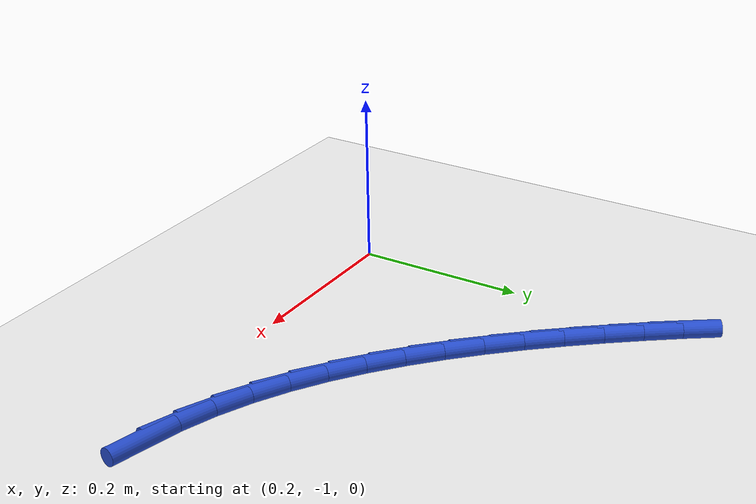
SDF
<sdf version="1.6">
 <world name="default">
  <model name="ground_plane">
   <static>1</static>
   <link name="link">
    <collision name="collision">
     <geometry><plane><normal>0 0 1</normal><size>100 100</size></plane></geometry>
     <surface><friction><ode><mu>100</mu><mu2>50</mu2></ode></friction></surface>
    </collision>
    <visual name="visual">
     <cast_shadows>0</cast_shadows>
     <geometry><plane><normal>0 0 1</normal><size>100 100</size></plane></geometry>
     <material>
      <script><uri>file://media/materials/scripts/gazebo.material</uri><name>Gazebo/WhiteGlow</name></script>
     </material>
    </visual>
   </link>
  </model>
  <model name="line">
   <link name="link_151">
    <pose>0.661748859424954 -0.9637381480459905 0.01 0 1.57 -0.23054040333298093</pose>
    <collision name="collision">
     <geometry><cylinder><radius>0.01</radius><length>0.08</length></cylinder></geometry>
    </collision>
    <visual name="visual">
     <material>
      <script><name>Gazebo/Blue</name><uri>file://media/materials/scripts/gazebo.material</uri></script>
     </material>
     <geometry><cylinder><radius>0.01</radius><length>0.08</length></cylinder></geometry>
    </visual>
   </link>
   <link name="link_152">
    <pose>0.6203308311870082 -0.9540167791467615 0.01 0 1.57 -0.32743690568117145</pose>
    <collision name="collision">
     <geometry><cylinder><radius>0.01</radius><length>0.08</length></cylinder></geometry>
    </collision>
    <visual name="visual">
     <material>
      <script><name>Gazebo/Blue</name><uri>file://media/materials/scripts/gazebo.material</uri></script>
     </material>
     <geometry><cylinder><radius>0.01</radius><length>0.08</length></cylinder></geometry>
    </visual>
   </link>
   <link name="link_153">
    <pose>0.5802578213787328 -0.9404054376426615 0.01 0 1.57 -0.41720066458152344</pose>
    <collision name="collision">
     <geometry><cylinder><radius>0.01</radius><length>0.08</length></cylinder></geometry>
    </collision>
    <visual name="visual">
     <material>
      <script><name>Gazebo/Blue</name><uri>file://media/materials/scripts/gazebo.material</uri></script>
     </material>
     <geometry><cylinder><radius>0.01</radius><length>0.08</length></cylinder></geometry>
    </visual>
   </link>
   <link name="link_154">
    <pose>0.5415097328272399 -0.923231543504695 0.01 0 1.57 -0.49904673483549333</pose>
    <collision name="collision">
     <geometry><cylinder><radius>0.01</radius><length>0.08</length></cylinder></geometry>
    </collision>
    <visual name="visual">
     <material>
      <script><name>Gazebo/Blue</name><uri>file://media/materials/scripts/gazebo.material</uri></script>
     </material>
     <geometry><cylinder><radius>0.01</radius><length>0.08</length></cylinder></geometry>
    </visual>
   </link>
   <link name="link_155">
    <pose>0.5040664683596434 -0.9028225167038685 0.01 0 1.57 -0.5727444846912729</pose>
    <collision name="collision">
     <geometry><cylinder><radius>0.01</radius><length>0.08</length></cylinder></geometry>
    </collision>
    <visual name="visual">
     <material>
      <script><name>Gazebo/Blue</name><uri>file://media/materials/scripts/gazebo.material</uri></script>
     </material>
     <geometry><cylinder><radius>0.01</radius><length>0.08</length></cylinder></geometry>
    </visual>
   </link>
   <link name="link_156">
    <pose>0.4679079308030552 -0.879505777211187 0.01 0 1.57 -0.6384677317254122</pose>
    <collision name="collision">
     <geometry><cylinder><radius>0.01</radius><length>0.08</length></cylinder></geometry>
    </collision>
    <visual name="visual">
     <material>
      <script><name>Gazebo/Blue</name><uri>file://media/materials/scripts/gazebo.material</uri></script>
     </material>
     <geometry><cylinder><radius>0.01</radius><length>0.08</length></cylinder></geometry>
    </visual>
   </link>
   <link name="link_157">
    <pose>0.4330140229845877 -0.8536087449976554 0.01 0 1.57 -0.6966427290463365</pose>
    <collision name="collision">
     <geometry><cylinder><radius>0.01</radius><length>0.08</length></cylinder></geometry>
    </collision>
    <visual name="visual">
     <material>
      <script><name>Gazebo/Blue</name><uri>file://media/materials/scripts/gazebo.material</uri></script>
     </material>
     <geometry><cylinder><radius>0.01</radius><length>0.08</length></cylinder></geometry>
    </visual>
   </link>
   <link name="link_158">
    <pose>0.3993646477313539 -0.82545884003428 0.01 0 1.57 -0.7478227229240088</pose>
    <collision name="collision">
     <geometry><cylinder><radius>0.01</radius><length>0.08</length></cylinder></geometry>
    </collision>
    <visual name="visual">
     <material>
      <script><name>Gazebo/Blue</name><uri>file://media/materials/scripts/gazebo.material</uri></script>
     </material>
     <geometry><cylinder><radius>0.01</radius><length>0.08</length></cylinder></geometry>
    </visual>
   </link>
   <link name="link_159">
    <pose>0.36693970787046537 -0.7953834822920649 0.01 0 1.57 -0.7925972784567041</pose>
    <collision name="collision">
     <geometry><cylinder><radius>0.01</radius><length>0.08</length></cylinder></geometry>
    </collision>
    <visual name="visual">
     <material>
      <script><name>Gazebo/Blue</name><uri>file://media/materials/scripts/gazebo.material</uri></script>
     </material>
     <geometry><cylinder><radius>0.01</radius><length>0.08</length></cylinder></geometry>
    </visual>
   </link>
   <link name="link_160">
    <pose>0.3357191062290361 -0.7637100917420171 0.01 0 1.57 -0.8315328541251875</pose>
    <collision name="collision">
     <geometry><cylinder><radius>0.01</radius><length>0.08</length></cylinder></geometry>
    </collision>
    <visual name="visual">
     <material>
      <script><name>Gazebo/Blue</name><uri>file://media/materials/scripts/gazebo.material</uri></script>
     </material>
     <geometry><cylinder><radius>0.01</radius><length>0.08</length></cylinder></geometry>
    </visual>
   </link>
   <link name="link_161">
    <pose>0.3056827456341782 -0.7307660883551413 0.01 0 1.57 -0.8651367391906363</pose>
    <collision name="collision">
     <geometry><cylinder><radius>0.01</radius><length>0.08</length></cylinder></geometry>
    </collision>
    <visual name="visual">
     <material>
      <script><name>Gazebo/Blue</name><uri>file://media/materials/scripts/gazebo.material</uri></script>
     </material>
     <geometry><cylinder><radius>0.01</radius><length>0.08</length></cylinder></geometry>
    </visual>
   </link>
   <link name="link_162">
    <pose>0.2768105289130041 -0.6968788921024429 0.01 0 1.57 -0.8938362194514139</pose>
    <collision name="collision">
     <geometry><cylinder><radius>0.01</radius><length>0.08</length></cylinder></geometry>
    </collision>
    <visual name="visual">
     <material>
      <script><name>Gazebo/Blue</name><uri>file://media/materials/scripts/gazebo.material</uri></script>
     </material>
     <geometry><cylinder><radius>0.01</radius><length>0.08</length></cylinder></geometry>
    </visual>
   </link>
   <link name="link_163">
    <pose>0.24908235889262645 -0.6623759229549275 0.01 0 1.57 -0.9180759641009765</pose>
    <collision name="collision">
     <geometry><cylinder><radius>0.01</radius><length>0.08</length></cylinder></geometry>
    </collision>
    <visual name="visual">
     <material>
      <script><name>Gazebo/Blue</name><uri>file://media/materials/scripts/gazebo.material</uri></script>
     </material>
     <geometry><cylinder><radius>0.01</radius><length>0.08</length></cylinder></geometry>
    </visual>
   </link>
   <link name="link_164">
    <pose>0.2224794411843419 -0.6275783872206401 0.01 0 1.57 -0.9415441516557539</pose>
    <collision name="collision">
     <geometry><cylinder><radius>0.01</radius><length>0.08</length></cylinder></geometry>
    </collision>
    <visual name="visual">
     <material>
      <script><name>Gazebo/Blue</name><uri>file://media/materials/scripts/gazebo.material</uri></script>
     </material>
     <geometry><cylinder><radius>0.01</radius><length>0.08</length></cylinder></geometry>
    </visual>
   </link>
   <link name="link_165">
    <pose>0.1970241907932609 -0.5926109419348424 0.01 0 1.57 -0.9683967606964016</pose>
    <collision name="collision">
     <geometry><cylinder><radius>0.01</radius><length>0.08</length></cylinder></geometry>
    </collision>
    <visual name="visual">
     <material>
      <script><name>Gazebo/Blue</name><uri>file://media/materials/scripts/gazebo.material</uri></script>
     </material>
     <geometry><cylinder><radius>0.01</radius><length>0.08</length></cylinder></geometry>
    </visual>
   </link>
  </model>
 </world>
</sdf>
